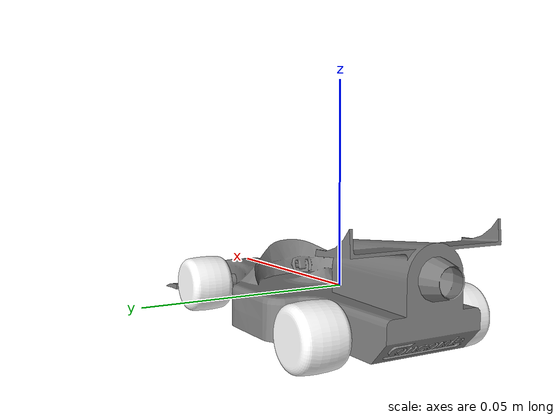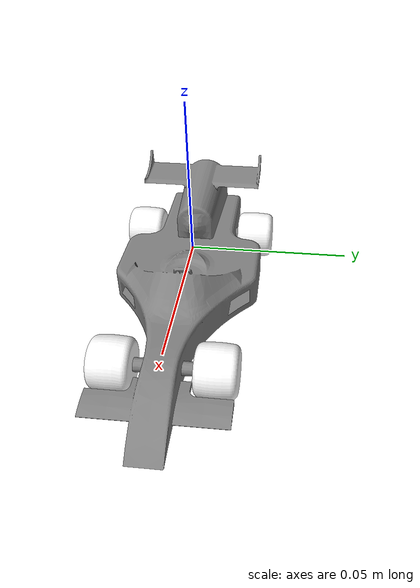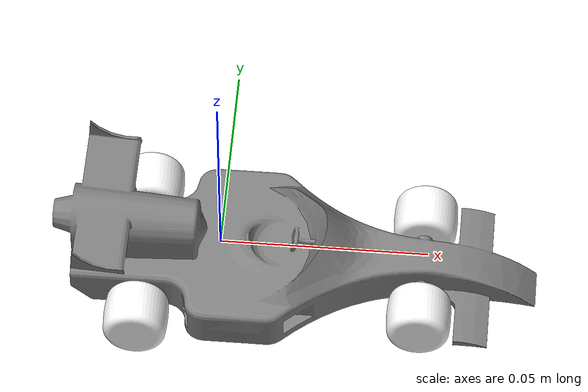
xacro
<?xml version="1.0"?>
<robot name="concorde" xmlns:xacro="http://www.ros.org/wiki/xacro">

  <!-- ============ PROPERTIES ============ -->
  <xacro:property name="mesh_dir" value="file:///home/muzammil/ros2_ws/install/concorde/share/concorde/meshes/"/>
  <xacro:property name="wheel_separation_front" value="0.0410"/>   <!-- |FL_y| + |FR_y| -->
  <xacro:property name="wheel_separation_rear" value="0.0510"/>    <!-- |BL_y| + |BR_y| -->
  <xacro:property name="wheel_separation" value="0.041"/>          <!-- average -->
  <xacro:property name="wheel_radius" value="0.02"/>               <!-- measure from mesh, adjust if needed -->

  <!-- ============ WHEEL MACRO ============ -->
  <xacro:macro name="wheel" params="prefix joint_x joint_y joint_z mass inertia_ixx inertia_ixy inertia_ixz inertia_iyy inertia_iyz inertia_izz inert_origin_x inert_origin_y inert_origin_z">
    <link name="link_${prefix}">
      <inertial>
        <origin xyz="${inert_origin_x} ${inert_origin_y} ${inert_origin_z}" rpy="0 0 0"/>
        <mass value="${mass}"/>
        <inertia ixx="${inertia_ixx}" ixy="${inertia_ixy}" ixz="${inertia_ixz}"
                 iyy="${inertia_iyy}" iyz="${inertia_iyz}"
                 izz="${inertia_izz}"/>
      </inertial>
      <visual>
        <origin xyz="0 0 0" rpy="0 0 0"/>
        <geometry>
          <mesh filename="${mesh_dir}link_${prefix}.STL"/>
        </geometry>
        <material name=""><color rgba="1 1 1 1"/></material>
      </visual>
      <collision>
        <origin xyz="0 0 0" rpy="0 0 0"/>
        <geometry>
          <mesh filename="${mesh_dir}link_${prefix}.STL"/>
        </geometry>
      </collision>
    </link>

    <joint name="joint_${prefix}" type="continuous">
      <origin xyz="${joint_x} ${joint_y} ${joint_z}" rpy="0 0 0"/>
      <parent link="base_link"/>
      <child link="link_${prefix}"/>
      <axis xyz="0 1 0"/>
    </joint>
  </xacro:macro>

  <!-- ============ BASE LINK ============ -->
  <link name="base_link">
    <inertial>
      <origin xyz="0.0050006 -7.9635E-07 -0.0029105" rpy="0 0 0"/>
      <mass value="0.030526"/>
      <inertia ixx="3.1037E-06" ixy="-6.4881E-10" ixz="1.5093E-06"
               iyy="2.0657E-05" iyz="3.7094E-11"
               izz="2.2043E-05"/>
    </inertial>
    <visual>
      <origin xyz="0 0 0" rpy="0 0 0"/>
      <geometry>
        <mesh filename="${mesh_dir}base_link.STL"/>
      </geometry>
      <material name=""><color rgba="0.50196 0.50196 0.50196 1"/></material>
    </visual>
    <collision>
      <origin xyz="0 0 0" rpy="0 0 0"/>
      <geometry>
        <mesh filename="${mesh_dir}base_link.STL"/>
      </geometry>
    </collision>
  </link>

  <!-- ============ WHEELS ============ -->
  <!-- Front Right -->
  <xacro:wheel prefix="FR"
               joint_x="0.048826" joint_y="-0.0205" joint_z="-0.0058097"
               mass="0.0020848"
               inertia_ixx="5.2358E-08" inertia_ixy="1.1117E-24" inertia_ixz="-4.392E-25"
               inertia_iyy="5.9195E-08" inertia_iyz="-1.0562E-24"
               inertia_izz="5.2358E-08"
               inert_origin_x="8.6736E-19" inert_origin_y="0.0059525" inert_origin_z="0"/>

  <!-- Front Left -->
  <xacro:wheel prefix="FL"
               joint_x="0.048826" joint_y="0.0205" joint_z="-0.0058097"
               mass="0.0020848"
               inertia_ixx="5.2358E-08" inertia_ixy="2.6949E-25" inertia_ixz="3.4549E-25"
               inertia_iyy="5.9195E-08" inertia_iyz="-7.0085E-25"
               inertia_izz="5.2358E-08"
               inert_origin_x="-1.7347E-18" inert_origin_y="-0.0059525" inert_origin_z="0"/>

  <!-- Back Right -->
  <xacro:wheel prefix="BR"
               joint_x="-0.018674" joint_y="-0.0255" joint_z="-0.006"
               mass="0.0020848"
               inertia_ixx="5.2358E-08" inertia_ixy="8.0645E-25" inertia_ixz="4.5554E-25"
               inertia_iyy="5.9195E-08" inertia_iyz="-1.2474E-24"
               inertia_izz="5.2358E-08"
               inert_origin_x="0" inert_origin_y="0.0059525" inert_origin_z="-1.3878E-17"/>

  <!-- Back Left -->
  <xacro:wheel prefix="BL"
               joint_x="-0.018674" joint_y="0.0255" joint_z="-0.006"
               mass="0.0020848"
               inertia_ixx="5.2358E-08" inertia_ixy="-7.9204E-25" inertia_ixz="3.9571E-25"
               inertia_iyy="5.9195E-08" inertia_iyz="1.8783E-25"
               inertia_izz="5.2358E-08"
               inert_origin_x="0" inert_origin_y="-0.0059525" inert_origin_z="1.3878E-17"/>

<!-- ============ VELOCITY CONTROL PLUGIN ============ -->
  <gazebo>
    <plugin name="gz::sim::v8::systems::VelocityControl"
            filename="libgz-sim8-velocity-control-system.so">
      <topic>/model/concorde/cmd_vel</topic>
      <left_joint>joint_FL joint_BL</left_joint>
      <right_joint>joint_FR joint_BR</right_joint>
      <wheel_separation>0.046</wheel_separation>
      <wheel_radius>0.02</wheel_radius>
    </plugin>
  </gazebo>

</robot>
